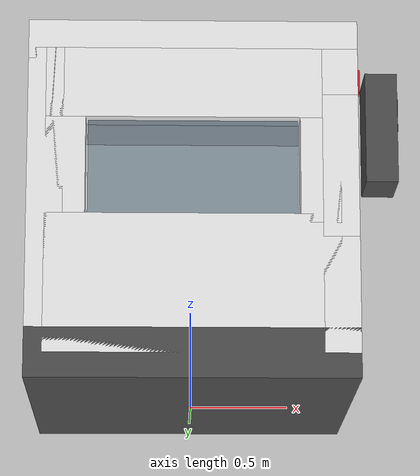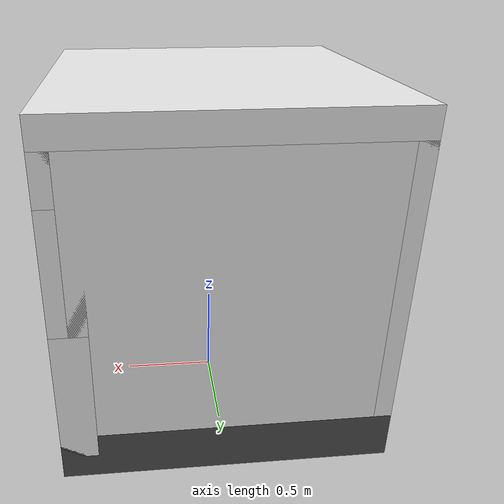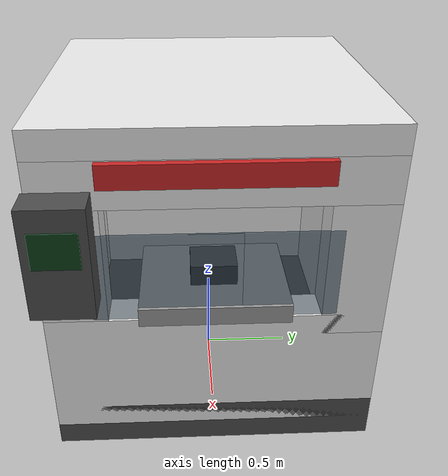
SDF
<?xml version="1.0"?>
<sdf version="1.6">
  <model name="haas_mini_mill">
    <static>true</static>

    <!-- Local +X is the front door. Local -Y is the automatic side window. -->
    <link name="enclosure">
      <collision name="base_collision">
        <pose>0 0 0.125 0 0 0</pose>
        <geometry><box><size>1.65 1.70 0.25</size></box></geometry>
      </collision>
      <visual name="base_visual">
        <pose>0 0 0.125 0 0 0</pose>
        <geometry><box><size>1.65 1.70 0.25</size></box></geometry>
        <material><script><uri>file://media/materials/scripts/gazebo.material</uri><name>Gazebo/DarkGrey</name></script></material>
      </visual>

      <collision name="rear_collision">
        <pose>-0.735 0 0.965 0 0 0</pose>
        <geometry><box><size>0.18 1.70 1.43</size></box></geometry>
      </collision>
      <visual name="rear_visual">
        <pose>-0.735 0 0.965 0 0 0</pose>
        <geometry><box><size>0.18 1.70 1.43</size></box></geometry>
        <material><script><uri>file://media/materials/scripts/gazebo.material</uri><name>Gazebo/White</name></script></material>
      </visual>

      <collision name="left_side_collision">
        <pose>0 0.775 0.965 0 0 0</pose>
        <geometry><box><size>1.47 0.15 1.43</size></box></geometry>
      </collision>
      <visual name="left_side_visual">
        <pose>0 0.775 0.965 0 0 0</pose>
        <geometry><box><size>1.47 0.15 1.43</size></box></geometry>
        <material><script><uri>file://media/materials/scripts/gazebo.material</uri><name>Gazebo/White</name></script></material>
      </visual>

      <!-- Four panels surround the collision-free automatic side window. -->
      <collision name="side_window_lower_collision">
        <pose>0 -0.775 0.475 0 0 0</pose>
        <geometry><box><size>1.47 0.15 0.70</size></box></geometry>
      </collision>
      <visual name="side_window_lower_visual">
        <pose>0 -0.775 0.475 0 0 0</pose>
        <geometry><box><size>1.47 0.15 0.70</size></box></geometry>
        <material><script><uri>file://media/materials/scripts/gazebo.material</uri><name>Gazebo/White</name></script></material>
      </visual>
      <collision name="side_window_upper_collision">
        <pose>0 -0.775 1.500 0 0 0</pose>
        <geometry><box><size>1.47 0.15 0.36</size></box></geometry>
      </collision>
      <visual name="side_window_upper_visual">
        <pose>0 -0.775 1.500 0 0 0</pose>
        <geometry><box><size>1.47 0.15 0.36</size></box></geometry>
        <material><script><uri>file://media/materials/scripts/gazebo.material</uri><name>Gazebo/White</name></script></material>
      </visual>
      <collision name="side_window_front_collision">
        <pose>0.635 -0.775 1.050 0 0 0</pose>
        <geometry><box><size>0.20 0.15 0.54</size></box></geometry>
      </collision>
      <visual name="side_window_front_visual">
        <pose>0.635 -0.775 1.050 0 0 0</pose>
        <geometry><box><size>0.20 0.15 0.54</size></box></geometry>
        <material><script><uri>file://media/materials/scripts/gazebo.material</uri><name>Gazebo/White</name></script></material>
      </visual>
      <collision name="side_window_rear_collision">
        <pose>-0.635 -0.775 1.050 0 0 0</pose>
        <geometry><box><size>0.20 0.15 0.54</size></box></geometry>
      </collision>
      <visual name="side_window_rear_visual">
        <pose>-0.635 -0.775 1.050 0 0 0</pose>
        <geometry><box><size>0.20 0.15 0.54</size></box></geometry>
        <material><script><uri>file://media/materials/scripts/gazebo.material</uri><name>Gazebo/White</name></script></material>
      </visual>
      <visual name="side_window_visual">
        <pose>0 -0.776 1.050 1.57079632679 0 0</pose>
        <geometry><box><size>1.05 0.54 0.012</size></box></geometry>
        <material>
          <ambient>0.08 0.20 0.28 0.45</ambient>
          <diffuse>0.08 0.20 0.28 0.45</diffuse>
        </material>
        <transparency>0.55</transparency>
      </visual>

      <!-- Front panels leave the robot-tending door collision-free. -->
      <collision name="front_lower_collision">
        <pose>0.735 0 0.475 0 0 0</pose>
        <geometry><box><size>0.18 1.70 0.70</size></box></geometry>
      </collision>
      <visual name="front_lower_visual">
        <pose>0.735 0 0.475 0 0 0</pose>
        <geometry><box><size>0.18 1.70 0.70</size></box></geometry>
        <material><script><uri>file://media/materials/scripts/gazebo.material</uri><name>Gazebo/White</name></script></material>
      </visual>
      <collision name="front_upper_collision">
        <pose>0.735 0 1.560 0 0 0</pose>
        <geometry><box><size>0.18 1.70 0.24</size></box></geometry>
      </collision>
      <visual name="front_upper_visual">
        <pose>0.735 0 1.560 0 0 0</pose>
        <geometry><box><size>0.18 1.70 0.24</size></box></geometry>
        <material><script><uri>file://media/materials/scripts/gazebo.material</uri><name>Gazebo/White</name></script></material>
      </visual>
      <collision name="front_left_collision">
        <pose>0.735 0.690 1.075 0 0 0</pose>
        <geometry><box><size>0.18 0.32 0.73</size></box></geometry>
      </collision>
      <visual name="front_left_visual">
        <pose>0.735 0.690 1.075 0 0 0</pose>
        <geometry><box><size>0.18 0.32 0.73</size></box></geometry>
        <material><script><uri>file://media/materials/scripts/gazebo.material</uri><name>Gazebo/White</name></script></material>
      </visual>
      <collision name="front_right_collision">
        <pose>0.735 -0.690 1.075 0 0 0</pose>
        <geometry><box><size>0.18 0.32 0.73</size></box></geometry>
      </collision>
      <visual name="front_right_visual">
        <pose>0.735 -0.690 1.075 0 0 0</pose>
        <geometry><box><size>0.18 0.32 0.73</size></box></geometry>
        <material><script><uri>file://media/materials/scripts/gazebo.material</uri><name>Gazebo/White</name></script></material>
      </visual>
      <visual name="front_door_left_visual">
        <pose>0.826 0.235 1.075 0 1.57079632679 0</pose>
        <geometry><box><size>0.47 0.73 0.012</size></box></geometry>
        <material><ambient>0.08 0.20 0.28 0.45</ambient><diffuse>0.08 0.20 0.28 0.45</diffuse></material>
        <transparency>0.55</transparency>
      </visual>
      <visual name="front_door_right_visual">
        <pose>0.826 -0.235 1.075 0 1.57079632679 0</pose>
        <geometry><box><size>0.47 0.73 0.012</size></box></geometry>
        <material><ambient>0.08 0.20 0.28 0.45</ambient><diffuse>0.08 0.20 0.28 0.45</diffuse></material>
        <transparency>0.55</transparency>
      </visual>

      <collision name="roof_collision">
        <pose>0 0 1.725 0 0 0</pose>
        <geometry><box><size>1.65 1.70 0.20</size></box></geometry>
      </collision>
      <visual name="roof_visual">
        <pose>0 0 1.725 0 0 0</pose>
        <geometry><box><size>1.65 1.70 0.20</size></box></geometry>
        <material><script><uri>file://media/materials/scripts/gazebo.material</uri><name>Gazebo/White</name></script></material>
      </visual>
      <visual name="header_visual">
        <pose>0.842 0 1.615 0 0 0</pose>
        <geometry><box><size>0.04 1.06 0.12</size></box></geometry>
        <material><script><uri>file://media/materials/scripts/gazebo.material</uri><name>Gazebo/Red</name></script></material>
      </visual>
      <visual name="control_panel_visual">
        <pose>0.940 -0.700 1.270 0 0 0</pose>
        <geometry><box><size>0.16 0.30 0.56</size></box></geometry>
        <material><script><uri>file://media/materials/scripts/gazebo.material</uri><name>Gazebo/DarkGrey</name></script></material>
      </visual>
      <visual name="control_screen_visual">
        <pose>1.022 -0.700 1.350 0 1.57079632679 0</pose>
        <geometry><box><size>0.18 0.22 0.008</size></box></geometry>
        <material><ambient>0.05 0.25 0.10 1</ambient><diffuse>0.05 0.25 0.10 1</diffuse></material>
      </visual>
    </link>

    <link name="workholding">
      <pose>0.55 0 0.855 0 0 0</pose>
      <collision name="table_collision">
        <geometry><box><size>0.60 0.76 0.10</size></box></geometry>
      </collision>
      <visual name="table_visual">
        <geometry><box><size>0.60 0.76 0.10</size></box></geometry>
        <material><script><uri>file://media/materials/scripts/gazebo.material</uri><name>Gazebo/Grey</name></script></material>
      </visual>
      <collision name="vise_collision">
        <pose>0 0 0.105 0 0 0</pose>
        <geometry><box><size>0.20 0.24 0.11</size></box></geometry>
      </collision>
      <visual name="vise_visual">
        <pose>0 0 0.105 0 0 0</pose>
        <geometry><box><size>0.20 0.24 0.11</size></box></geometry>
        <material><script><uri>file://media/materials/scripts/gazebo.material</uri><name>Gazebo/DarkGrey</name></script></material>
      </visual>
    </link>

    <link name="front_access">
      <pose>1.05 0 1.05 0 0 0</pose>
    </link>
    <link name="side_access">
      <pose>0 -1.05 1.05 0 0 0</pose>
    </link>
  </model>
</sdf>
